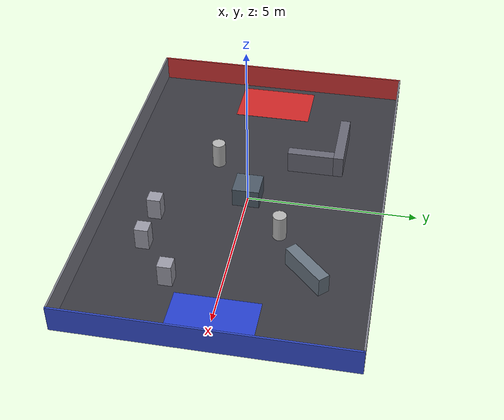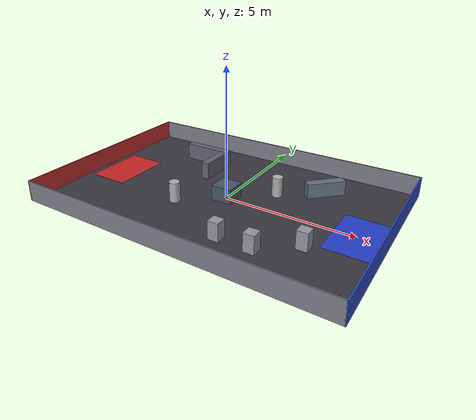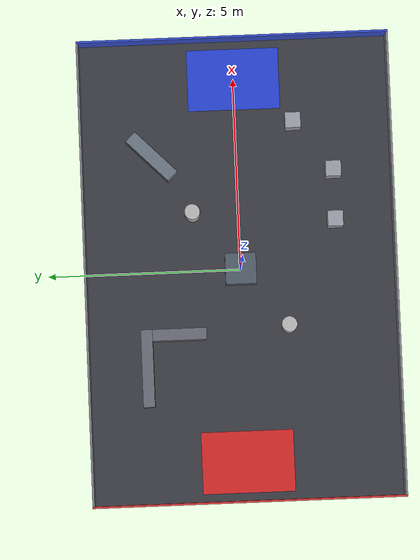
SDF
<sdf version="1.8">
 <world name="rm_world">
  <plugin filename="gz-sim-physics-system" name="gz::sim::systems::Physics"/>
  <plugin filename="gz-sim-user-commands-system" name="gz::sim::systems::UserCommands"/>
  <plugin filename="gz-sim-scene-broadcaster-system" name="gz::sim::systems::SceneBroadcaster"/>
  <plugin filename="gz-sim-sensors-system" name="gz::sim::systems::Sensors">
   <render_engine>ogre2</render_engine>
  </plugin>
  <light type="directional" name="center_light">
   <pose>0 0 12 0 0 0</pose>
   <diffuse>0.9 0.9 0.95 1</diffuse>
   <specular>0.3 0.3 0.3 1</specular>
   <direction>-0.2 0.2 -0.9</direction>
  </light>
  <light type="directional" name="side_light">
   <cast_shadows>false</cast_shadows>
   <pose>0 0 10 0 0 0</pose>
   <diffuse>0.4 0.4 0.45 1</diffuse>
   <direction>0.3 -0.2 -0.8</direction>
  </light>
  <model name="complex_rm_arena">
   <static>true</static>
   <link name="arena_floor">
    <collision name="floor_col"><geometry><box><size>12.0 8.0 0.05</size></box></geometry></collision>
    <visual name="floor_vis">
     <geometry><box><size>12.0 8.0 0.05</size></box></geometry>
     <material><ambient>0.22 0.22 0.25 1</ambient><diffuse>0.22 0.22 0.25 1</diffuse></material>
    </visual>
   </link>
   <link name="red_base_ground">
    <pose>-5.0 0 0.026 0 0 0</pose>
    <visual name="vis">
     <geometry><box><size>1.6 2.4 0.002</size></box></geometry>
     <material><ambient>0.8 0.15 0.15 1</ambient><diffuse>0.8 0.15 0.15 1</diffuse></material>
    </visual>
   </link>
   <link name="blue_base_ground">
    <pose>5.0 0 0.026 0 0 0</pose>
    <visual name="vis">
     <geometry><box><size>1.6 2.4 0.002</size></box></geometry>
     <material><ambient>0.15 0.25 0.8 1</ambient><diffuse>0.15 0.25 0.8 1</diffuse></material>
    </visual>
   </link>
   <link name="wall_north">
    <pose>0 4.025 0.4 0 0 0</pose>
    <collision name="col"><geometry><box><size>12.05 0.05 0.8</size></box></geometry></collision>
    <visual name="vis">
     <geometry><box><size>12.05 0.05 0.8</size></box></geometry>
     <material><ambient>0.5 0.5 0.55 0.9</ambient><diffuse>0.5 0.5 0.55 0.9</diffuse></material>
    </visual>
   </link>
   <link name="wall_south">
    <pose>0 -4.025 0.4 0 0 0</pose>
    <collision name="col"><geometry><box><size>12.05 0.05 0.8</size></box></geometry></collision>
    <visual name="vis">
     <geometry><box><size>12.05 0.05 0.8</size></box></geometry>
     <material><ambient>0.5 0.5 0.55 0.9</ambient><diffuse>0.5 0.5 0.55 0.9</diffuse></material>
    </visual>
   </link>
   <link name="wall_west">
    <pose>-6.025 0 0.4 0 0 0</pose>
    <collision name="col"><geometry><box><size>0.05 8.1 0.8</size></box></geometry></collision>
    <visual name="vis">
     <geometry><box><size>0.05 8.1 0.8</size></box></geometry>
     <material><ambient>0.8 0.2 0.2 1</ambient><diffuse>0.8 0.2 0.2 1</diffuse></material>
    </visual>
   </link>
   <link name="wall_east">
    <pose>6.025 0 0.4 0 0 0</pose>
    <collision name="col"><geometry><box><size>0.05 8.1 0.8</size></box></geometry></collision>
    <visual name="vis">
     <geometry><box><size>0.05 8.1 0.8</size></box></geometry>
     <material><ambient>0.2 0.3 0.8 1</ambient><diffuse>0.2 0.3 0.8 1</diffuse></material>
    </visual>
   </link>
   <link name="center_block">
    <pose>0 0 0.3 0 0 0</pose>
    <collision name="col"><geometry><box><size>0.8 0.8 0.6</size></box></geometry></collision>
    <visual name="vis">
     <geometry><box><size>0.8 0.8 0.6</size></box></geometry>
     <material><ambient>0.3 0.35 0.4 1</ambient><diffuse>0.3 0.35 0.4 1</diffuse></material>
    </visual>
   </link>
   <link name="center_pillar_ne">
    <pose>1.5 1.2 0.4 0 0 0</pose>
    <collision name="col">
     <geometry><cylinder><radius>0.2</radius><length>0.8</length></cylinder></geometry>
    </collision>
    <visual name="vis">
     <geometry><cylinder><radius>0.2</radius><length>0.8</length></cylinder></geometry>
     <material><ambient>0.7 0.7 0.7 1</ambient><diffuse>0.7 0.7 0.7 1</diffuse></material>
    </visual>
   </link>
   <link name="center_pillar_sw">
    <pose>-1.5 -1.2 0.4 0 0 0</pose>
    <collision name="col">
     <geometry><cylinder><radius>0.2</radius><length>0.8</length></cylinder></geometry>
    </collision>
    <visual name="vis">
     <geometry><cylinder><radius>0.2</radius><length>0.8</length></cylinder></geometry>
     <material><ambient>0.7 0.7 0.7 1</ambient><diffuse>0.7 0.7 0.7 1</diffuse></material>
    </visual>
   </link>
   <link name="north_l_wall_1">
    <pose>-2.5 2.5 0.35 0 0 0</pose>
    <collision name="col"><geometry><box><size>2.0 0.3 0.7</size></box></geometry></collision>
    <visual name="vis">
     <geometry><box><size>2.0 0.3 0.7</size></box></geometry>
     <material><ambient>0.35 0.35 0.4 1</ambient><diffuse>0.4 0.4 0.45 1</diffuse></material>
    </visual>
   </link>
   <link name="north_l_wall_2">
    <pose>-1.65 1.65 0.35 0 0 0</pose>
    <collision name="col"><geometry><box><size>0.3 1.4 0.7</size></box></geometry></collision>
    <visual name="vis">
     <geometry><box><size>0.3 1.4 0.7</size></box></geometry>
     <material><ambient>0.35 0.35 0.4 1</ambient><diffuse>0.4 0.4 0.45 1</diffuse></material>
    </visual>
   </link>
   <link name="south_pillar_1">
    <pose>2.5 -2.5 0.35 0 0 0</pose>
    <collision name="col"><geometry><box><size>0.4 0.4 0.7</size></box></geometry></collision>
    <visual name="vis">
     <geometry><box><size>0.4 0.4 0.7</size></box></geometry>
     <material><ambient>0.6 0.6 0.65 1</ambient><diffuse>0.6 0.6 0.65 1</diffuse></material>
    </visual>
   </link>
   <link name="south_pillar_2">
    <pose>3.8 -1.5 0.35 0 0 0</pose>
    <collision name="col"><geometry><box><size>0.4 0.4 0.7</size></box></geometry></collision>
    <visual name="vis">
     <geometry><box><size>0.4 0.4 0.7</size></box></geometry>
     <material><ambient>0.6 0.6 0.65 1</ambient><diffuse>0.6 0.6 0.65 1</diffuse></material>
    </visual>
   </link>
   <link name="south_pillar_3">
    <pose>1.2 -2.5 0.35 0 0 0</pose>
    <collision name="col"><geometry><box><size>0.4 0.4 0.7</size></box></geometry></collision>
    <visual name="vis">
     <geometry><box><size>0.4 0.4 0.7</size></box></geometry>
     <material><ambient>0.6 0.6 0.65 1</ambient><diffuse>0.6 0.6 0.65 1</diffuse></material>
    </visual>
   </link>
   <link name="angled_obstacle">
    <pose>3.0 2.2 0.3 0 0 0.785</pose>
    <collision name="col"><geometry><box><size>1.5 0.35 0.6</size></box></geometry></collision>
    <visual name="vis">
     <geometry><box><size>1.5 0.35 0.6</size></box></geometry>
     <material><ambient>0.4 0.45 0.5 1</ambient><diffuse>0.4 0.45 0.5 1</diffuse></material>
    </visual>
   </link>
  </model>
 </world>
</sdf>
